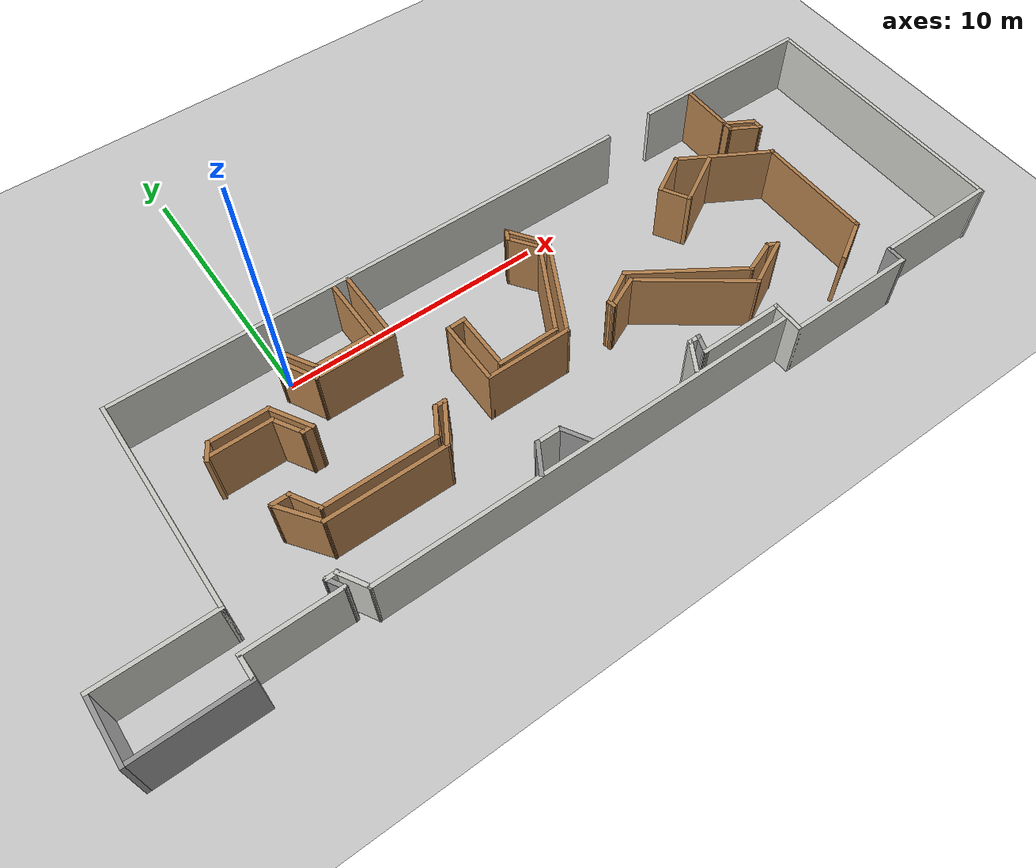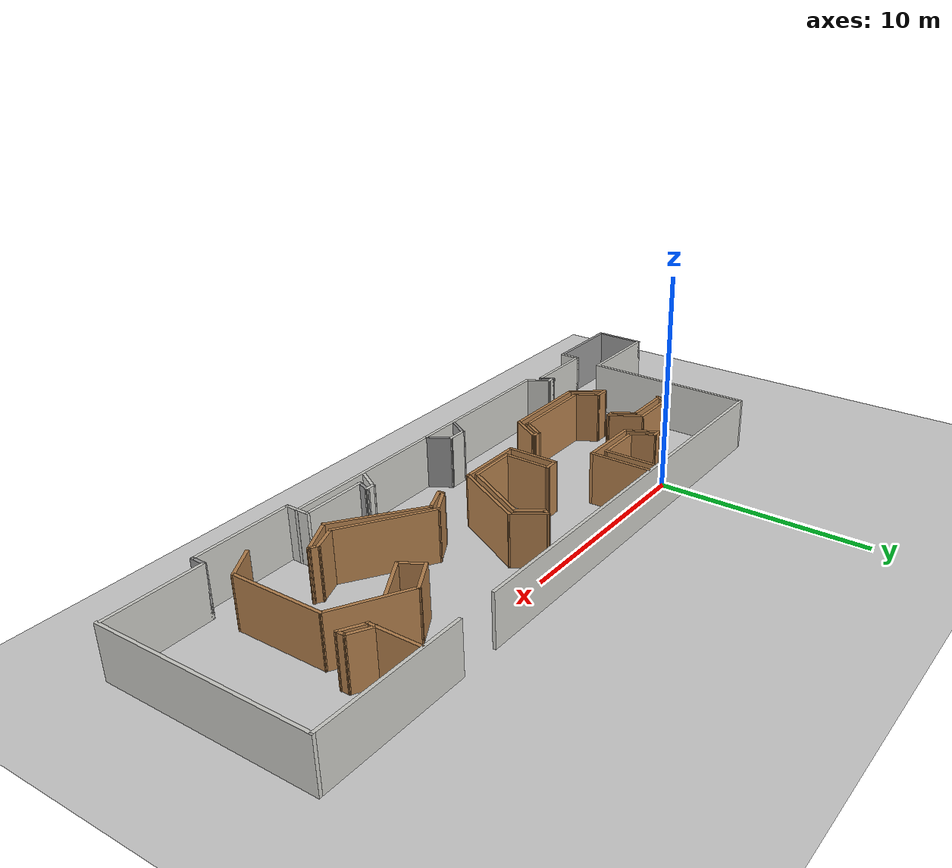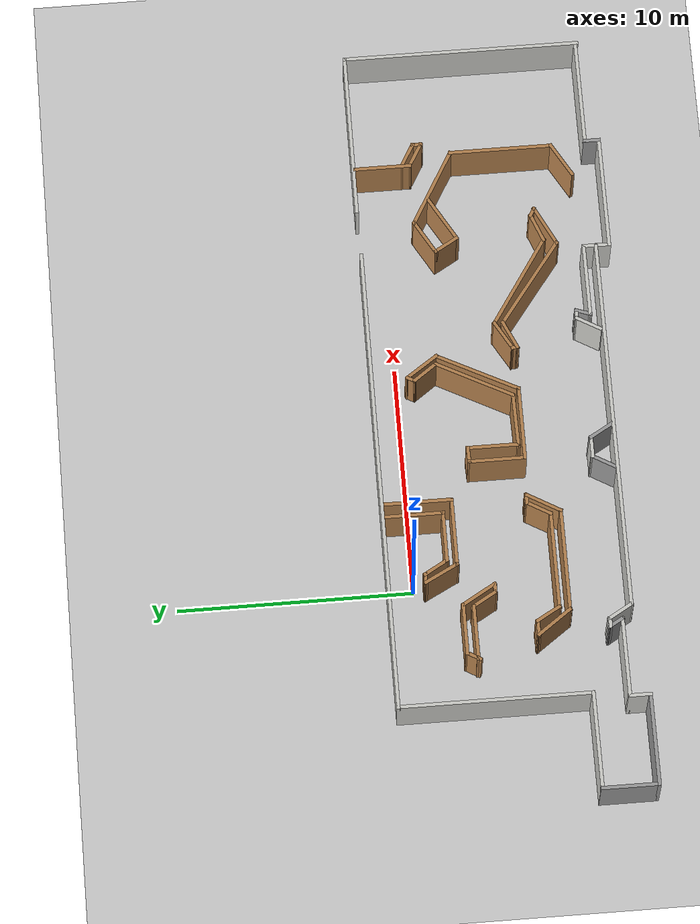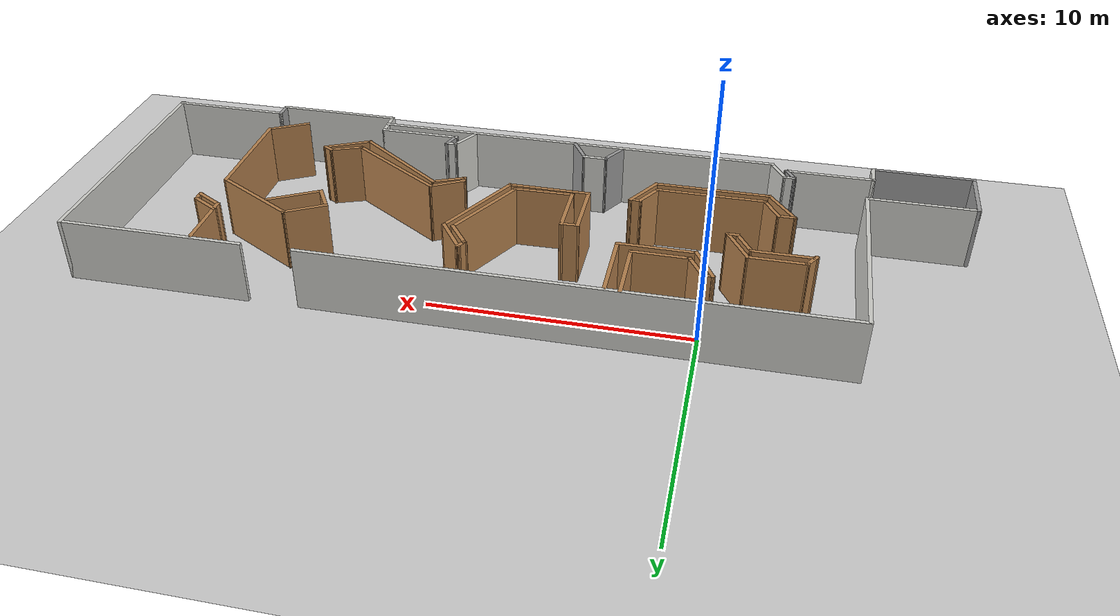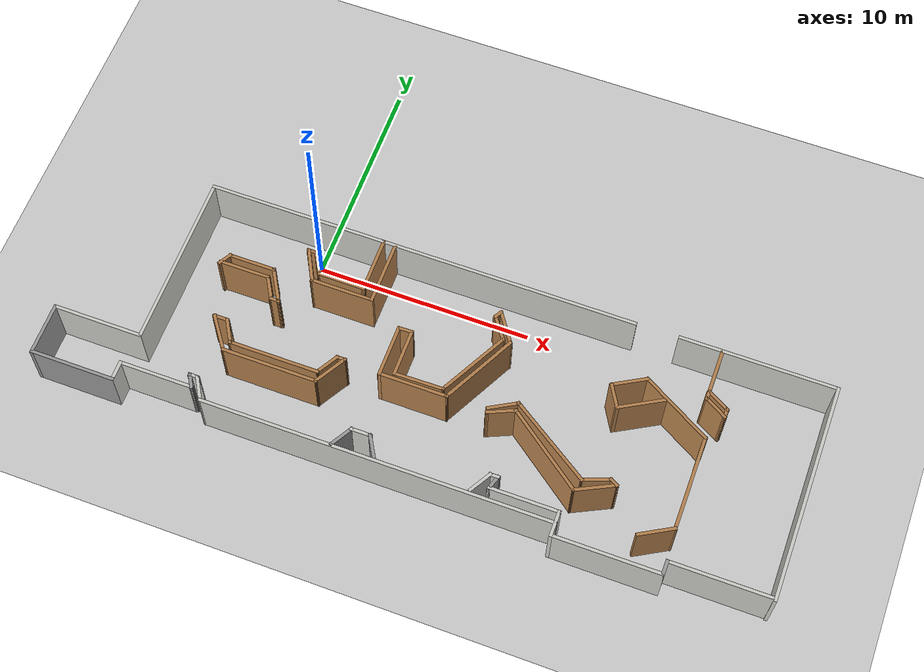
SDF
<sdf version="1.7">
 <world name="default">
  <light name="sun" type="directional">
   <pose>0 0 10 0 -0 0</pose>
   <diffuse>0.8 0.8 0.8 1</diffuse>
   <specular>0.2 0.2 0.2 1</specular>
   <attenuation>
    <range>1000</range>
    <constant>0.9</constant>
    <linear>0.01</linear>
    <quadratic>0.001</quadratic>
   </attenuation>
   <direction>-0.5 0.1 -0.9</direction>
   <spot><inner_angle>0</inner_angle><outer_angle>0</outer_angle><falloff>0</falloff></spot>
  </light>
  <model name="ground_plane">
   <static>1</static>
   <link name="link">
    <collision name="collision">
     <geometry><plane><normal>0 0 1</normal><size>100 100</size></plane></geometry>
     <surface>
      <contact><collide_bitmask>65535</collide_bitmask></contact>
      <friction><ode><mu>100</mu><mu2>50</mu2></ode></friction>
     </surface>
    </collision>
    <visual name="visual">
     <cast_shadows>0</cast_shadows>
     <geometry><plane><normal>0 0 1</normal><size>100 100</size></plane></geometry>
     <material>
      <script><uri>file://media/materials/scripts/gazebo.material</uri><name>Gazebo/Grey</name></script>
     </material>
    </visual>
   </link>
  </model>
  <gravity>0 0 -9.8</gravity>
  <magnetic_field>6e-06 2.3e-05 -4.2e-05</magnetic_field>
  <atmosphere type="adiabatic"/>
  <physics type="ode">
   <max_step_size>0.001</max_step_size>
   <real_time_factor>1</real_time_factor>
   <real_time_update_rate>1000</real_time_update_rate>
  </physics>
  <scene><ambient>0.4 0.4 0.4 1</ambient><background>0.7 0.7 0.7 1</background><shadows>1</shadows></scene>
  <spherical_coordinates>
   <surface_model>EARTH_WGS84</surface_model>
   <latitude_deg>0</latitude_deg>
   <longitude_deg>0</longitude_deg>
   <elevation>0</elevation>
   <heading_deg>0</heading_deg>
  </spherical_coordinates>
  <model name="galatamuseo">
   <pose>6.98533 -4.19559 0 0 -0 0</pose>
   <link name="Wall_10">
    <collision name="Wall_10_Collision">
     <geometry><box><size>2.5 0.15 2.5</size></box></geometry>
     <pose>0 0 1.25 0 -0 0</pose>
    </collision>
    <visual name="Wall_10_Visual">
     <pose>0 0 1.25 0 -0 0</pose>
     <geometry><box><size>2.5 0.15 2.5</size></box></geometry>
     <material>
      <script><uri>file://media/materials/scripts/gazebo.material</uri><name>Gazebo/Grey</name></script>
      <ambient>1 1 1 1</ambient>
     </material>
     <meta><layer>0</layer></meta>
    </visual>
    <pose>-16.6794 -3.98927 0 0 -0 1.5708</pose>
   </link>
   <link name="Wall_11">
    <collision name="Wall_11_Collision">
     <geometry><box><size>4.25 0.15 2.5</size></box></geometry>
     <pose>0 0 1.25 0 -0 0</pose>
    </collision>
    <visual name="Wall_11_Visual">
     <pose>0 0 1.25 0 -0 0</pose>
     <geometry><box><size>4.25 0.15 2.5</size></box></geometry>
     <material>
      <script><uri>file://media/materials/scripts/gazebo.material</uri><name>Gazebo/CeilingTiled</name></script>
      <ambient>1 1 1 1</ambient>
     </material>
     <meta><layer>0</layer></meta>
    </visual>
    <pose>-14.6294 -2.81427 0 0 -0 0</pose>
   </link>
   <link name="Wall_13">
    <collision name="Wall_13_Collision">
     <geometry><box><size>8.25 0.15 2.5</size></box></geometry>
     <pose>0 0 1.25 0 -0 0</pose>
    </collision>
    <visual name="Wall_13_Visual">
     <pose>0 0 1.25 0 -0 0</pose>
     <geometry><box><size>8.25 0.15 2.5</size></box></geometry>
     <material>
      <script><uri>file://media/materials/scripts/gazebo.material</uri><name>Gazebo/CeilingTiled</name></script>
      <ambient>1 1 1 1</ambient>
     </material>
     <meta><layer>0</layer></meta>
    </visual>
    <pose>-12.5794 1.23573 0 0 -0 1.5708</pose>
   </link>
   <link name="Wall_14">
    <collision name="Wall_14_Collision">
     <geometry><box><size>20.25 0.15 2.5</size></box></geometry>
     <pose>0 0 1.25 0 -0 0</pose>
    </collision>
    <visual name="Wall_14_Visual">
     <pose>0 0 1.25 0 -0 0</pose>
     <geometry><box><size>20.25 0.15 2.5</size></box></geometry>
     <material>
      <script><uri>file://media/materials/scripts/gazebo.material</uri><name>Gazebo/CeilingTiled</name></script>
      <ambient>1 1 1 1</ambient>
     </material>
     <meta><layer>0</layer></meta>
    </visual>
    <pose>-2.52941 5.28573 0 0 -0 0</pose>
   </link>
   <link name="Wall_16">
    <collision name="Wall_16_Collision">
     <geometry><box><size>7.25 0.15 2.5</size></box></geometry>
     <pose>0 0 1.25 0 -0 0</pose>
    </collision>
    <visual name="Wall_16_Visual">
     <pose>0 0 1.25 0 -0 0</pose>
     <geometry><box><size>7.25 0.15 2.5</size></box></geometry>
     <material>
      <script><uri>file://media/materials/scripts/gazebo.material</uri><name>Gazebo/CeilingTiled</name></script>
      <ambient>1 1 1 1</ambient>
     </material>
     <meta><layer>0</layer></meta>
    </visual>
    <pose>13.1294 5.32308 0 0 -0 0</pose>
   </link>
   <link name="Wall_17">
    <collision name="Wall_17_Collision">
     <geometry><box><size>10.25 0.15 2.5</size></box></geometry>
     <pose>0 0 1.25 0 -0 0</pose>
    </collision>
    <visual name="Wall_17_Visual">
     <pose>0 0 1.25 0 -0 0</pose>
     <geometry><box><size>10.25 0.15 2.5</size></box></geometry>
     <material>
      <script><uri>file://media/materials/scripts/gazebo.material</uri><name>Gazebo/CeilingTiled</name></script>
      <ambient>1 1 1 1</ambient>
     </material>
     <meta><layer>0</layer></meta>
    </visual>
    <pose>16.6794 0.273081 0 0 -0 -1.5708</pose>
   </link>
   <link name="Wall_20">
    <collision name="Wall_20_Collision">
     <geometry><box><size>1 0.15 2.5</size></box></geometry>
     <pose>0 0 1.25 0 -0 0</pose>
    </collision>
    <visual name="Wall_20_Visual">
     <pose>0 0 1.25 0 -0 0</pose>
     <geometry><box><size>1 0.15 2.5</size></box></geometry>
     <material>
      <script><uri>file://media/materials/scripts/gazebo.material</uri><name>Gazebo/CeilingTiled</name></script>
      <ambient>1 1 1 1</ambient>
     </material>
     <meta><layer>0</layer></meta>
    </visual>
    <pose>-12.8294 -4.73927 0 0 -0 1.5708</pose>
   </link>
   <link name="Wall_21">
    <collision name="Wall_21_Collision">
     <geometry><box><size>3.5 0.15 2.5</size></box></geometry>
     <pose>0 0 1.25 0 -0 0</pose>
    </collision>
    <visual name="Wall_21_Visual">
     <pose>0 0 1.25 0 -0 0</pose>
     <geometry><box><size>3.5 0.15 2.5</size></box></geometry>
     <material>
      <script><uri>file://media/materials/scripts/gazebo.material</uri><name>Gazebo/CeilingTiled</name></script>
      <ambient>1 1 1 1</ambient>
     </material>
     <meta><layer>0</layer></meta>
    </visual>
    <pose>-11.1544 -4.31427 0 0 -0 0</pose>
   </link>
   <link name="Wall_22">
    <collision name="Wall_22_Collision">
     <geometry><box><size>0.75 0.15 2.5</size></box></geometry>
     <pose>0 0 1.25 0 -0 0</pose>
    </collision>
    <visual name="Wall_22_Visual">
     <pose>0 0 1.25 0 -0 0</pose>
     <geometry><box><size>0.75 0.15 2.5</size></box></geometry>
     <material>
      <script><uri>file://media/materials/scripts/gazebo.material</uri><name>Gazebo/Grey</name></script>
      <ambient>1 1 1 1</ambient>
     </material>
     <meta><layer>0</layer></meta>
    </visual>
    <pose>-9.62941 -4.05446 0 0 -0 2.0944</pose>
   </link>
   <link name="Wall_23">
    <collision name="Wall_23_Collision">
     <geometry><box><size>0.15 0.15 2.5</size></box></geometry>
     <pose>0 0 1.25 0 -0 0</pose>
    </collision>
    <visual name="Wall_23_Visual">
     <pose>0 0 1.25 0 -0 0</pose>
     <geometry><box><size>0.15 0.15 2.5</size></box></geometry>
     <material>
      <script><uri>file://media/materials/scripts/gazebo.material</uri><name>Gazebo/Grey</name></script>
      <ambient>1 1 1 1</ambient>
     </material>
     <meta><layer>0</layer></meta>
    </visual>
    <pose>-9.77941 -3.79465 0 0 -0 0</pose>
   </link>
   <link name="Wall_25">
    <collision name="Wall_25_Collision">
     <geometry><box><size>0.5 0.15 2.5</size></box></geometry>
     <pose>0 0 1.25 0 -0 0</pose>
    </collision>
    <visual name="Wall_25_Visual">
     <pose>0 0 1.25 0 -0 0</pose>
     <geometry><box><size>0.5 0.15 2.5</size></box></geometry>
     <material>
      <script><uri>file://media/materials/scripts/gazebo.material</uri><name>Gazebo/CeilingTiled</name></script>
      <ambient>1 1 1 1</ambient>
     </material>
     <meta><layer>0</layer></meta>
    </visual>
    <pose>-9.60441 -3.79465 0 0 -0 0</pose>
   </link>
   <link name="Wall_26">
    <collision name="Wall_26_Collision">
     <geometry><box><size>1.25 0.15 2.5</size></box></geometry>
     <pose>0 0 1.25 0 -0 0</pose>
    </collision>
    <visual name="Wall_26_Visual">
     <pose>0 0 1.25 0 -0 0</pose>
     <geometry><box><size>1.25 0.15 2.5</size></box></geometry>
     <material>
      <script><uri>file://media/materials/scripts/gazebo.material</uri><name>Gazebo/CeilingTiled</name></script>
      <ambient>1 1 1 1</ambient>
     </material>
     <meta><layer>0</layer></meta>
    </visual>
    <pose>-9.15441 -4.27097 0 0 -0 -1.0472</pose>
   </link>
   <link name="Wall_27">
    <collision name="Wall_27_Collision">
     <geometry><box><size>16.25 0.15 2.5</size></box></geometry>
     <pose>0 0 1.25 0 -0 0</pose>
    </collision>
    <visual name="Wall_27_Visual">
     <pose>0 0 1.25 0 -0 0</pose>
     <geometry><box><size>16.25 0.15 2.5</size></box></geometry>
     <material>
      <script><uri>file://media/materials/scripts/gazebo.material</uri><name>Gazebo/CeilingTiled</name></script>
      <ambient>1 1 1 1</ambient>
     </material>
     <meta><layer>0</layer></meta>
    </visual>
    <pose>-0.829412 -4.74728 0 0 -0 0</pose>
   </link>
   <link name="Wall_30">
    <collision name="Wall_30_Collision">
     <geometry><box><size>1.25 0.15 2.5</size></box></geometry>
     <pose>0 0 1.25 0 -0 0</pose>
    </collision>
    <visual name="Wall_30_Visual">
     <pose>0 0 1.25 0 -0 0</pose>
     <geometry><box><size>1.25 0.15 2.5</size></box></geometry>
     <material>
      <script><uri>file://media/materials/scripts/gazebo.material</uri><name>Gazebo/Grey</name></script>
      <ambient>1 1 1 1</ambient>
     </material>
     <meta><layer>0</layer></meta>
    </visual>
    <pose>-2.55852 -4.21984 0 0 -0 1.0472</pose>
   </link>
   <link name="Wall_31">
    <collision name="Wall_31_Collision">
     <geometry><box><size>1 0.15 2.5</size></box></geometry>
     <pose>0 0 1.25 0 -0 0</pose>
    </collision>
    <visual name="Wall_31_Visual">
     <pose>0 0 1.25 0 -0 0</pose>
     <geometry><box><size>1 0.15 2.5</size></box></geometry>
     <material>
      <script><uri>file://media/materials/scripts/gazebo.material</uri><name>Gazebo/CeilingTiled</name></script>
      <ambient>1 1 1 1</ambient>
     </material>
     <meta><layer>0</layer></meta>
    </visual>
    <pose>-1.85852 -3.74353 0 0 -0 0</pose>
   </link>
   <link name="Wall_32">
    <collision name="Wall_32_Collision">
     <geometry><box><size>1.25 0.15 2.5</size></box></geometry>
     <pose>0 0 1.25 0 -0 0</pose>
    </collision>
    <visual name="Wall_32_Visual">
     <pose>0 0 1.25 0 -0 0</pose>
     <geometry><box><size>1.25 0.15 2.5</size></box></geometry>
     <material>
      <script><uri>file://media/materials/scripts/gazebo.material</uri><name>Gazebo/Grey</name></script>
      <ambient>1 1 1 1</ambient>
     </material>
     <meta><layer>0</layer></meta>
    </visual>
    <pose>-1.15852 -4.21984 0 0 -0 -1.0472</pose>
   </link>
   <link name="Wall_34">
    <collision name="Wall_34_Collision">
     <geometry><box><size>1.25 0.15 2.5</size></box></geometry>
     <pose>0 0 1.25 0 -0 0</pose>
    </collision>
    <visual name="Wall_34_Visual">
     <pose>0 0 1.25 0 -0 0</pose>
     <geometry><box><size>1.25 0.15 2.5</size></box></geometry>
     <material>
      <script><uri>file://media/materials/scripts/gazebo.material</uri><name>Gazebo/CeilingTiled</name></script>
      <ambient>1 1 1 1</ambient>
     </material>
     <meta><layer>0</layer></meta>
    </visual>
    <pose>3.68148 -4.11984 0 0 -0 1.0472</pose>
   </link>
   <link name="Wall_35">
    <collision name="Wall_35_Collision">
     <geometry><box><size>0.5 0.15 2.5</size></box></geometry>
     <pose>0 0 1.25 0 -0 0</pose>
    </collision>
    <visual name="Wall_35_Visual">
     <pose>0 0 1.25 0 -0 0</pose>
     <geometry><box><size>0.5 0.15 2.5</size></box></geometry>
     <material>
      <script><uri>file://media/materials/scripts/gazebo.material</uri><name>Gazebo/CeilingTiled</name></script>
      <ambient>1 1 1 1</ambient>
     </material>
     <meta><layer>0</layer></meta>
    </visual>
    <pose>4.13148 -3.64353 0 0 -0 0</pose>
   </link>
   <link name="Wall_36">
    <collision name="Wall_36_Collision">
     <geometry><box><size>0.761574 0.15 2.5</size></box></geometry>
     <pose>0 0 1.25 0 -0 0</pose>
    </collision>
    <visual name="Wall_36_Visual">
     <pose>0 0 1.25 0 -0 0</pose>
     <geometry><box><size>0.761574 0.15 2.5</size></box></geometry>
     <material>
      <script><uri>file://media/materials/scripts/gazebo.material</uri><name>Gazebo/Grey</name></script>
      <ambient>1 1 1 1</ambient>
     </material>
     <meta><layer>0</layer></meta>
    </visual>
    <pose>4.20884 -3.9333 0 0 -0 -1.89581</pose>
   </link>
   <link name="Wall_39">
    <collision name="Wall_39_Collision">
     <geometry><box><size>3.25 0.15 2.5</size></box></geometry>
     <pose>0 0 1.25 0 -0 0</pose>
    </collision>
    <visual name="Wall_39_Visual">
     <pose>0 0 1.25 0 -0 0</pose>
     <geometry><box><size>3.25 0.15 2.5</size></box></geometry>
     <material>
      <script><uri>file://media/materials/scripts/gazebo.material</uri><name>Gazebo/CeilingTiled</name></script>
      <ambient>1 1 1 1</ambient>
     </material>
     <meta><layer>0</layer></meta>
    </visual>
    <pose>5.66119 -4.22308 0 0 -0 0</pose>
   </link>
   <link name="Wall_40">
    <collision name="Wall_40_Collision">
     <geometry><box><size>1.25 0.15 2.5</size></box></geometry>
     <pose>0 0 1.25 0 -0 0</pose>
    </collision>
    <visual name="Wall_40_Visual">
     <pose>0 0 1.25 0 -0 0</pose>
     <geometry><box><size>1.25 0.15 2.5</size></box></geometry>
     <material>
      <script><uri>file://media/materials/scripts/gazebo.material</uri><name>Gazebo/CeilingTiled</name></script>
      <ambient>1 1 1 1</ambient>
     </material>
     <meta><layer>0</layer></meta>
    </visual>
    <pose>7.21119 -4.77308 0 0 -0 -1.5708</pose>
   </link>
   <link name="Wall_41">
    <collision name="Wall_41_Collision">
     <geometry><box><size>5 0.15 2.5</size></box></geometry>
     <pose>0 0 1.25 0 -0 0</pose>
    </collision>
    <visual name="Wall_41_Visual">
     <pose>0 0 1.25 0 -0 0</pose>
     <geometry><box><size>5 0.15 2.5</size></box></geometry>
     <material>
      <script><uri>file://media/materials/scripts/gazebo.material</uri><name>Gazebo/CeilingTiled</name></script>
      <ambient>1 1 1 1</ambient>
     </material>
     <meta><layer>0</layer></meta>
    </visual>
    <pose>9.63619 -5.32308 0 0 -0 0</pose>
   </link>
   <link name="Wall_42">
    <collision name="Wall_42_Collision">
     <geometry><box><size>0.75 0.15 2.5</size></box></geometry>
     <pose>0 0 1.25 0 -0 0</pose>
    </collision>
    <visual name="Wall_42_Visual">
     <pose>0 0 1.25 0 -0 0</pose>
     <geometry><box><size>0.75 0.15 2.5</size></box></geometry>
     <material>
      <script><uri>file://media/materials/scripts/gazebo.material</uri><name>Gazebo/Grey</name></script>
      <ambient>1 1 1 1</ambient>
     </material>
     <meta><layer>0</layer></meta>
    </visual>
    <pose>12.0612 -5.02308 0 0 -0 1.5708</pose>
   </link>
   <link name="Wall_43">
    <collision name="Wall_43_Collision">
     <geometry><box><size>4.75 0.15 2.5</size></box></geometry>
     <pose>0 0 1.25 0 -0 0</pose>
    </collision>
    <visual name="Wall_43_Visual">
     <pose>0 0 1.25 0 -0 0</pose>
     <geometry><box><size>4.75 0.15 2.5</size></box></geometry>
     <material>
      <script><uri>file://media/materials/scripts/gazebo.material</uri><name>Gazebo/CeilingTiled</name></script>
      <ambient>1 1 1 1</ambient>
     </material>
     <meta><layer>0</layer></meta>
    </visual>
    <pose>14.3612 -4.72308 0 0 -0 0</pose>
   </link>
   <link name="Wall_45">
    <collision name="Wall_45_Collision">
     <geometry><box><size>1.75 0.15 2.5</size></box></geometry>
     <pose>0 0 1.25 0 -0 0</pose>
    </collision>
    <visual name="Wall_45_Visual">
     <pose>0 0 1.25 0 -0 0</pose>
     <geometry><box><size>1.75 0.15 2.5</size></box></geometry>
     <material>
      <script><uri>file://media/materials/scripts/gazebo.material</uri><name>Gazebo/Wood</name></script>
      <ambient>1 1 1 1</ambient>
     </material>
     <meta><layer>0</layer></meta>
    </visual>
    <pose>11.2673 -3.63644 0 0 -0 0.523599</pose>
   </link>
   <link name="Wall_46">
    <collision name="Wall_46_Collision">
     <geometry><box><size>4.5 0.15 2.5</size></box></geometry>
     <pose>0 0 1.25 0 -0 0</pose>
    </collision>
    <visual name="Wall_46_Visual">
     <pose>0 0 1.25 0 -0 0</pose>
     <geometry><box><size>4.5 0.15 2.5</size></box></geometry>
     <material>
      <script><uri>file://media/materials/scripts/gazebo.material</uri><name>Gazebo/Wood</name></script>
      <ambient>1 1 1 1</ambient>
     </material>
     <meta><layer>0</layer></meta>
    </visual>
    <pose>11.9601 -1.06144 0 0 -0 1.5708</pose>
   </link>
   <link name="Wall_47">
    <collision name="Wall_47_Collision">
     <geometry><box><size>3.75 0.15 2.5</size></box></geometry>
     <pose>0 0 1.25 0 -0 0</pose>
    </collision>
    <visual name="Wall_47_Visual">
     <pose>0 0 1.25 0 -0 0</pose>
     <geometry><box><size>3.75 0.15 2.5</size></box></geometry>
     <material>
      <script><uri>file://media/materials/scripts/gazebo.material</uri><name>Gazebo/Wood</name></script>
      <ambient>1 1 1 1</ambient>
     </material>
     <meta><layer>0</layer></meta>
    </visual>
    <pose>10.4013 2.01356 0 0 -0 2.61799</pose>
   </link>
   <link name="Wall_49">
    <collision name="Wall_49_Collision">
     <geometry><box><size>1.75 0.15 2.5</size></box></geometry>
     <pose>0 0 1.25 0 -0 0</pose>
    </collision>
    <visual name="Wall_49_Visual">
     <pose>0 0 1.25 0 -0 0</pose>
     <geometry><box><size>1.75 0.15 2.5</size></box></geometry>
     <material>
      <script><uri>file://media/materials/scripts/gazebo.material</uri><name>Gazebo/Wood</name></script>
      <ambient>1 1 1 1</ambient>
     </material>
     <meta><layer>0</layer></meta>
    </visual>
    <pose>8.14959 2.51356 0 0 -0 -2.61799</pose>
   </link>
   <link name="Wall_50">
    <collision name="Wall_50_Collision">
     <geometry><box><size>1.25 0.15 2.5</size></box></geometry>
     <pose>0 0 1.25 0 -0 0</pose>
    </collision>
    <visual name="Wall_50_Visual">
     <pose>0 0 1.25 0 -0 0</pose>
     <geometry><box><size>1.25 0.15 2.5</size></box></geometry>
     <material>
      <script><uri>file://media/materials/scripts/gazebo.material</uri><name>Gazebo/Wood</name></script>
      <ambient>1 1 1 1</ambient>
     </material>
     <meta><layer>0</layer></meta>
    </visual>
    <pose>7.73177 1.63724 0 0 -0 -1.0472</pose>
   </link>
   <link name="Wall_51">
    <collision name="Wall_51_Collision">
     <geometry><box><size>2.25 0.15 2.5</size></box></geometry>
     <pose>0 0 1.25 0 -0 0</pose>
    </collision>
    <visual name="Wall_51_Visual">
     <pose>0 0 1.25 0 -0 0</pose>
     <geometry><box><size>2.25 0.15 2.5</size></box></geometry>
     <material>
      <script><uri>file://media/materials/scripts/gazebo.material</uri><name>Gazebo/Wood</name></script>
      <ambient>1 1 1 1</ambient>
     </material>
     <meta><layer>0</layer></meta>
    </visual>
    <pose>8.91609 1.68593 0 0 -0 0.523599</pose>
   </link>
   <link name="Wall_53">
    <collision name="Wall_53_Collision">
     <geometry><box><size>1.5 0.15 2.5</size></box></geometry>
     <pose>0 0 1.25 0 -0 0</pose>
    </collision>
    <visual name="Wall_53_Visual">
     <pose>0 0 1.25 0 -0 0</pose>
     <geometry><box><size>1.5 0.15 2.5</size></box></geometry>
     <material>
      <script><uri>file://media/materials/scripts/gazebo.material</uri><name>Gazebo/Wood</name></script>
      <ambient>1 1 1 1</ambient>
     </material>
     <meta><layer>0</layer></meta>
    </visual>
    <pose>3.4148 -0.461497 0 0 -0 0.523599</pose>
   </link>
   <link name="Wall_54">
    <collision name="Wall_54_Collision">
     <geometry><box><size>4.51774 0.15 2.5</size></box></geometry>
     <pose>0 0 1.25 0 -0 0</pose>
    </collision>
    <visual name="Wall_54_Visual">
     <pose>0 0 1.25 0 -0 0</pose>
     <geometry><box><size>4.51774 0.15 2.5</size></box></geometry>
     <material>
      <script><uri>file://media/materials/scripts/gazebo.material</uri><name>Gazebo/Wood</name></script>
      <ambient>1 1 1 1</ambient>
     </material>
     <meta><layer>0</layer></meta>
    </visual>
    <pose>5.81933 -1.33106 0 0 -0 -0.585622</pose>
   </link>
   <link name="Wall_56">
    <collision name="Wall_56_Collision">
     <geometry><box><size>1.38564 0.15 2.5</size></box></geometry>
     <pose>0 0 1.25 0 -0 0</pose>
    </collision>
    <visual name="Wall_56_Visual">
     <pose>0 0 1.25 0 -0 0</pose>
     <geometry><box><size>1.38564 0.15 2.5</size></box></geometry>
     <material>
      <script><uri>file://media/materials/scripts/gazebo.material</uri><name>Gazebo/Wood</name></script>
      <ambient>1 1 1 1</ambient>
     </material>
     <meta><layer>0</layer></meta>
    </visual>
    <pose>8.21397 -2.31128 0 0 -0 0.375961</pose>
   </link>
   <link name="Wall_57">
    <collision name="Wall_57_Collision">
     <geometry><box><size>0.5 0.15 2.5</size></box></geometry>
     <pose>0 0 1.25 0 -0 0</pose>
    </collision>
    <visual name="Wall_57_Visual">
     <pose>0 0 1.25 0 -0 0</pose>
     <geometry><box><size>0.5 0.15 2.5</size></box></geometry>
     <material>
      <script><uri>file://media/materials/scripts/gazebo.material</uri><name>Gazebo/Wood</name></script>
      <ambient>1 1 1 1</ambient>
     </material>
     <meta><layer>0</layer></meta>
    </visual>
    <pose>8.9402 -2.17194 0 0 -0 -0.523599</pose>
   </link>
   <link name="Wall_58">
    <collision name="Wall_58_Collision">
     <geometry><box><size>1.97954 0.15 2.5</size></box></geometry>
     <pose>0 0 1.25 0 -0 0</pose>
    </collision>
    <visual name="Wall_58_Visual">
     <pose>0 0 1.25 0 -0 0</pose>
     <geometry><box><size>1.97954 0.15 2.5</size></box></geometry>
     <material>
      <script><uri>file://media/materials/scripts/gazebo.material</uri><name>Gazebo/Wood</name></script>
      <ambient>1 1 1 1</ambient>
     </material>
     <meta><layer>0</layer></meta>
    </visual>
    <pose>8.27479 -2.671 0 0 -0 -2.67494</pose>
   </link>
   <link name="Wall_59">
    <collision name="Wall_59_Collision">
     <geometry><box><size>4.48119 0.15 2.5</size></box></geometry>
     <pose>0 0 1.25 0 -0 0</pose>
    </collision>
    <visual name="Wall_59_Visual">
     <pose>0 0 1.25 0 -0 0</pose>
     <geometry><box><size>4.48119 0.15 2.5</size></box></geometry>
     <material>
      <script><uri>file://media/materials/scripts/gazebo.material</uri><name>Gazebo/Wood</name></script>
      <ambient>1 1 1 1</ambient>
     </material>
     <meta><layer>0</layer></meta>
    </visual>
    <pose>5.72626 -1.78198 0 0 -0 2.49739</pose>
   </link>
   <link name="Wall_60">
    <collision name="Wall_60_Collision">
     <geometry><box><size>1.39532 0.15 2.5</size></box></geometry>
     <pose>0 0 1.25 0 -0 0</pose>
    </collision>
    <visual name="Wall_60_Visual">
     <pose>0 0 1.25 0 -0 0</pose>
     <geometry><box><size>1.39532 0.15 2.5</size></box></geometry>
     <material>
      <script><uri>file://media/materials/scripts/gazebo.material</uri><name>Gazebo/Wood</name></script>
      <ambient>1 1 1 1</ambient>
     </material>
     <meta><layer>0</layer></meta>
    </visual>
    <pose>3.42759 -0.738506 0 0 -0 -2.71597</pose>
   </link>
   <link name="Wall_61">
    <collision name="Wall_61_Collision">
     <geometry><box><size>0.34891 0.15 2.5</size></box></geometry>
     <pose>0 0 1.25 0 -0 0</pose>
    </collision>
    <visual name="Wall_61_Visual">
     <pose>0 0 1.25 0 -0 0</pose>
     <geometry><box><size>0.34891 0.15 2.5</size></box></geometry>
     <material>
      <script><uri>file://media/materials/scripts/gazebo.material</uri><name>Gazebo/Wood</name></script>
      <ambient>1 1 1 1</ambient>
     </material>
     <meta><layer>0</layer></meta>
    </visual>
    <pose>2.84535 -0.897297 0 0 -0 1.72345</pose>
   </link>
   <link name="Wall_63">
    <collision name="Wall_63_Collision">
     <geometry><box><size>2.5 0.15 2.5</size></box></geometry>
     <pose>0 0 1.25 0 -0 0</pose>
    </collision>
    <visual name="Wall_63_Visual">
     <pose>0 0 1.25 0 -0 0</pose>
     <geometry><box><size>2.5 0.15 2.5</size></box></geometry>
     <material>
      <script><uri>file://media/materials/scripts/gazebo.material</uri><name>Gazebo/Wood</name></script>
      <ambient>1 1 1 1</ambient>
     </material>
     <meta><layer>0</layer></meta>
    </visual>
    <pose>-2.11226 0.286198 0 0 -0 -1.5708</pose>
   </link>
   <link name="Wall_64">
    <collision name="Wall_64_Collision">
     <geometry><box><size>3.25 0.15 2.5</size></box></geometry>
     <pose>0 0 1.25 0 -0 0</pose>
    </collision>
    <visual name="Wall_64_Visual">
     <pose>0 0 1.25 0 -0 0</pose>
     <geometry><box><size>3.25 0.15 2.5</size></box></geometry>
     <material>
      <script><uri>file://media/materials/scripts/gazebo.material</uri><name>Gazebo/Wood</name></script>
      <ambient>1 1 1 1</ambient>
     </material>
     <meta><layer>0</layer></meta>
    </visual>
    <pose>-0.562258 -0.888803 0 0 -0 0</pose>
   </link>
   <link name="Wall_65">
    <collision name="Wall_65_Collision">
     <geometry><box><size>3.92715 0.15 2.5</size></box></geometry>
     <pose>0 0 1.25 0 -0 0</pose>
    </collision>
    <visual name="Wall_65_Visual">
     <pose>0 0 1.25 0 -0 0</pose>
     <geometry><box><size>3.92715 0.15 2.5</size></box></geometry>
     <material>
      <script><uri>file://media/materials/scripts/gazebo.material</uri><name>Gazebo/Wood</name></script>
      <ambient>1 1 1 1</ambient>
     </material>
     <meta><layer>0</layer></meta>
    </visual>
    <pose>1.84641 0.793285 0 0 -0 1.0988</pose>
   </link>
   <link name="Wall_66">
    <collision name="Wall_66_Collision">
     <geometry><box><size>1.70795 0.15 2.5</size></box></geometry>
     <pose>0 0 1.25 0 -0 0</pose>
    </collision>
    <visual name="Wall_66_Visual">
     <pose>0 0 1.25 0 -0 0</pose>
     <geometry><box><size>1.70795 0.15 2.5</size></box></geometry>
     <material>
      <script><uri>file://media/materials/scripts/gazebo.material</uri><name>Gazebo/Wood</name></script>
      <ambient>1 1 1 1</ambient>
     </material>
     <meta><layer>0</layer></meta>
    </visual>
    <pose>2.26625 3.11898 0 0 -0 2.16921</pose>
   </link>
   <link name="Wall_67">
    <collision name="Wall_67_Collision">
     <geometry><box><size>0.481557 0.15 2.5</size></box></geometry>
     <pose>0 0 1.25 0 -0 0</pose>
    </collision>
    <visual name="Wall_67_Visual">
     <pose>0 0 1.25 0 -0 0</pose>
     <geometry><box><size>0.481557 0.15 2.5</size></box></geometry>
     <material>
      <script><uri>file://media/materials/scripts/gazebo.material</uri><name>Gazebo/Wood</name></script>
      <ambient>1 1 1 1</ambient>
     </material>
     <meta><layer>0</layer></meta>
    </visual>
    <pose>1.74941 3.61632 0 0 -0 -2.06075</pose>
   </link>
   <link name="Wall_68">
    <collision name="Wall_68_Collision">
     <geometry><box><size>1.32442 0.15 2.5</size></box></geometry>
     <pose>0 0 1.25 0 -0 0</pose>
    </collision>
    <visual name="Wall_68_Visual">
     <pose>0 0 1.25 0 -0 0</pose>
     <geometry><box><size>1.32442 0.15 2.5</size></box></geometry>
     <material>
      <script><uri>file://media/materials/scripts/gazebo.material</uri><name>Gazebo/Wood</name></script>
      <ambient>1 1 1 1</ambient>
     </material>
     <meta><layer>0</layer></meta>
    </visual>
    <pose>2.0127 2.99221 0 0 -0 -0.950547</pose>
   </link>
   <link name="Wall_69">
    <collision name="Wall_69_Collision">
     <geometry><box><size>3.69172 0.15 2.5</size></box></geometry>
     <pose>0 0 1.25 0 -0 0</pose>
    </collision>
    <visual name="Wall_69_Visual">
     <pose>0 0 1.25 0 -0 0</pose>
     <geometry><box><size>3.69172 0.15 2.5</size></box></geometry>
     <material>
      <script><uri>file://media/materials/scripts/gazebo.material</uri><name>Gazebo/Wood</name></script>
      <ambient>1 1 1 1</ambient>
     </material>
     <meta><layer>0</layer></meta>
    </visual>
    <pose>1.53487 0.944359 0 0 -0 -2.05168</pose>
   </link>
   <link name="Wall_70">
    <collision name="Wall_70_Collision">
     <geometry><box><size>2.37347 0.15 2.5</size></box></geometry>
     <pose>0 0 1.25 0 -0 0</pose>
    </collision>
    <visual name="Wall_70_Visual">
     <pose>0 0 1.25 0 -0 0</pose>
     <geometry><box><size>2.37347 0.15 2.5</size></box></geometry>
     <material>
      <script><uri>file://media/materials/scripts/gazebo.material</uri><name>Gazebo/Wood</name></script>
      <ambient>1 1 1 1</ambient>
     </material>
     <meta><layer>0</layer></meta>
    </visual>
    <pose>-0.395963 -0.645165 0 0 -0 -3.12405</pose>
   </link>
   <link name="Wall_71">
    <collision name="Wall_71_Collision">
     <geometry><box><size>2.29537 0.15 2.5</size></box></geometry>
     <pose>0 0 1.25 0 -0 0</pose>
    </collision>
    <visual name="Wall_71_Visual">
     <pose>0 0 1.25 0 -0 0</pose>
     <geometry><box><size>2.29537 0.15 2.5</size></box></geometry>
     <material>
      <script><uri>file://media/materials/scripts/gazebo.material</uri><name>Gazebo/Wood</name></script>
      <ambient>1 1 1 1</ambient>
     </material>
     <meta><layer>0</layer></meta>
    </visual>
    <pose>-1.50765 0.408016 0 0 -0 1.5708</pose>
   </link>
   <link name="Wall_72">
    <collision name="Wall_72_Collision">
     <geometry><box><size>0.754918 0.15 2.5</size></box></geometry>
     <pose>0 0 1.25 0 -0 0</pose>
    </collision>
    <visual name="Wall_72_Visual">
     <pose>0 0 1.25 0 -0 0</pose>
     <geometry><box><size>0.754918 0.15 2.5</size></box></geometry>
     <material>
      <script><uri>file://media/materials/scripts/gazebo.material</uri><name>Gazebo/Wood</name></script>
      <ambient>1 1 1 1</ambient>
     </material>
     <meta><layer>0</layer></meta>
    </visual>
    <pose>-1.80996 1.47095 0 0 -0 -3.10935</pose>
   </link>
   <link name="Wall_74">
    <collision name="Wall_74_Collision">
     <geometry><box><size>0.75 0.15 2.5</size></box></geometry>
     <pose>0 0 1.25 0 -0 0</pose>
    </collision>
    <visual name="Wall_74_Visual">
     <pose>0 0 1.25 0 -0 0</pose>
     <geometry><box><size>0.75 0.15 2.5</size></box></geometry>
     <material>
      <script><uri>file://media/materials/scripts/gazebo.material</uri><name>Gazebo/Wood</name></script>
      <ambient>1 1 1 1</ambient>
     </material>
     <meta><layer>0</layer></meta>
    </visual>
    <pose>-9.61715 -0.793927 0 0 -0 0</pose>
   </link>
   <link name="Wall_75">
    <collision name="Wall_75_Collision">
     <geometry><box><size>1.25 0.15 2.5</size></box></geometry>
     <pose>0 0 1.25 0 -0 0</pose>
    </collision>
    <visual name="Wall_75_Visual">
     <pose>0 0 1.25 0 -0 0</pose>
     <geometry><box><size>1.25 0.15 2.5</size></box></geometry>
     <material>
      <script><uri>file://media/materials/scripts/gazebo.material</uri><name>Gazebo/Wood</name></script>
      <ambient>1 1 1 1</ambient>
     </material>
     <meta><layer>0</layer></meta>
    </visual>
    <pose>-9.04215 -1.27024 0 0 -0 -1.0472</pose>
   </link>
   <link name="Wall_76">
    <collision name="Wall_76_Collision">
     <geometry><box><size>4.25 0.15 2.5</size></box></geometry>
     <pose>0 0 1.25 0 -0 0</pose>
    </collision>
    <visual name="Wall_76_Visual">
     <pose>0 0 1.25 0 -0 0</pose>
     <geometry><box><size>4.25 0.15 2.5</size></box></geometry>
     <material>
      <script><uri>file://media/materials/scripts/gazebo.material</uri><name>Gazebo/Wood</name></script>
      <ambient>1 1 1 1</ambient>
     </material>
     <meta><layer>0</layer></meta>
    </visual>
    <pose>-6.71715 -1.74656 0 0 -0 0</pose>
   </link>
   <link name="Wall_77">
    <collision name="Wall_77_Collision">
     <geometry><box><size>1.25 0.15 2.5</size></box></geometry>
     <pose>0 0 1.25 0 -0 0</pose>
    </collision>
    <visual name="Wall_77_Visual">
     <pose>0 0 1.25 0 -0 0</pose>
     <geometry><box><size>1.25 0.15 2.5</size></box></geometry>
     <material>
      <script><uri>file://media/materials/scripts/gazebo.material</uri><name>Gazebo/Wood</name></script>
      <ambient>1 1 1 1</ambient>
     </material>
     <meta><layer>0</layer></meta>
    </visual>
    <pose>-4.39215 -1.27024 0 0 -0 1.0472</pose>
   </link>
   <link name="Wall_78">
    <collision name="Wall_78_Collision">
     <geometry><box><size>0.5 0.15 2.5</size></box></geometry>
     <pose>0 0 1.25 0 -0 0</pose>
    </collision>
    <visual name="Wall_78_Visual">
     <pose>0 0 1.25 0 -0 0</pose>
     <geometry><box><size>0.5 0.15 2.5</size></box></geometry>
     <material>
      <script><uri>file://media/materials/scripts/gazebo.material</uri><name>Gazebo/Wood</name></script>
      <ambient>1 1 1 1</ambient>
     </material>
     <meta><layer>0</layer></meta>
    </visual>
    <pose>-3.94215 -0.793927 0 0 -0 0</pose>
   </link>
   <link name="Wall_79">
    <collision name="Wall_79_Collision">
     <geometry><box><size>1.75 0.15 2.5</size></box></geometry>
     <pose>0 0 1.25 0 -0 0</pose>
    </collision>
    <visual name="Wall_79_Visual">
     <pose>0 0 1.25 0 -0 0</pose>
     <geometry><box><size>1.75 0.15 2.5</size></box></geometry>
     <material>
      <script><uri>file://media/materials/scripts/gazebo.material</uri><name>Gazebo/Wood</name></script>
      <ambient>1 1 1 1</ambient>
     </material>
     <meta><layer>0</layer></meta>
    </visual>
    <pose>-4.16715 -1.48675 0 0 -0 -2.0944</pose>
   </link>
   <link name="Wall_8">
    <collision name="Wall_8_Collision">
     <geometry><box><size>4 0.15 2.5</size></box></geometry>
     <pose>0 0 1.25 0 -0 0</pose>
    </collision>
    <visual name="Wall_8_Visual">
     <pose>0 0 1.25 0 -0 0</pose>
     <geometry><box><size>4 0.15 2.5</size></box></geometry>
     <material>
      <script><uri>file://media/materials/scripts/gazebo.material</uri><name>Gazebo/Grey</name></script>
      <ambient>1 1 1 1</ambient>
     </material>
     <meta><layer>0</layer></meta>
    </visual>
    <pose>-14.7544 -5.16427 0 0 -0 3.14159</pose>
   </link>
   <link name="Wall_80">
    <collision name="Wall_80_Collision">
     <geometry><box><size>4.5 0.15 2.5</size></box></geometry>
     <pose>0 0 1.25 0 -0 0</pose>
    </collision>
    <visual name="Wall_80_Visual">
     <pose>0 0 1.25 0 -0 0</pose>
     <geometry><box><size>4.5 0.15 2.5</size></box></geometry>
     <material>
      <script><uri>file://media/materials/scripts/gazebo.material</uri><name>Gazebo/Wood</name></script>
      <ambient>1 1 1 1</ambient>
     </material>
     <meta><layer>0</layer></meta>
    </visual>
    <pose>-6.74215 -2.17957 0 0 -0 3.14159</pose>
   </link>
   <link name="Wall_81">
    <collision name="Wall_81_Collision">
     <geometry><box><size>1.8588 0.15 2.5</size></box></geometry>
     <pose>0 0 1.25 0 -0 0</pose>
    </collision>
    <visual name="Wall_81_Visual">
     <pose>0 0 1.25 0 -0 0</pose>
     <geometry><box><size>1.8588 0.15 2.5</size></box></geometry>
     <material>
      <script><uri>file://media/materials/scripts/gazebo.material</uri><name>Gazebo/Wood</name></script>
      <ambient>1 1 1 1</ambient>
     </material>
     <meta><layer>0</layer></meta>
    </visual>
    <pose>-9.41715 -1.48675 0 0 -0 2.19593</pose>
   </link>
   <link name="Wall_83">
    <collision name="Wall_83_Collision">
     <geometry><box><size>0.75 0.15 2.5</size></box></geometry>
     <pose>0 0 1.25 0 -0 0</pose>
    </collision>
    <visual name="Wall_83_Visual">
     <pose>0 0 1.25 0 -0 0</pose>
     <geometry><box><size>0.75 0.15 2.5</size></box></geometry>
     <material>
      <script><uri>file://media/materials/scripts/gazebo.material</uri><name>Gazebo/Wood</name></script>
      <ambient>1 1 1 1</ambient>
     </material>
     <meta><layer>0</layer></meta>
    </visual>
    <pose>-10.6253 1.98181 0 0 -0 1.0472</pose>
   </link>
   <link name="Wall_84">
    <collision name="Wall_84_Collision">
     <geometry><box><size>2.25 0.15 2.5</size></box></geometry>
     <pose>0 0 1.25 0 -0 0</pose>
    </collision>
    <visual name="Wall_84_Visual">
     <pose>0 0 1.25 0 -0 0</pose>
     <geometry><box><size>2.25 0.15 2.5</size></box></geometry>
     <material>
      <script><uri>file://media/materials/scripts/gazebo.material</uri><name>Gazebo/Wood</name></script>
      <ambient>1 1 1 1</ambient>
     </material>
     <meta><layer>0</layer></meta>
    </visual>
    <pose>-9.4253 2.24162 0 0 -0 0</pose>
   </link>
   <link name="Wall_85">
    <collision name="Wall_85_Collision">
     <geometry><box><size>1.75 0.15 2.5</size></box></geometry>
     <pose>0 0 1.25 0 -0 0</pose>
    </collision>
    <visual name="Wall_85_Visual">
     <pose>0 0 1.25 0 -0 0</pose>
     <geometry><box><size>1.75 0.15 2.5</size></box></geometry>
     <material>
      <script><uri>file://media/materials/scripts/gazebo.material</uri><name>Gazebo/Wood</name></script>
      <ambient>1 1 1 1</ambient>
     </material>
     <meta><layer>0</layer></meta>
    </visual>
    <pose>-7.9753 1.5488 0 0 -0 -1.0472</pose>
   </link>
   <link name="Wall_86">
    <collision name="Wall_86_Collision">
     <geometry><box><size>0.5 0.15 2.5</size></box></geometry>
     <pose>0 0 1.25 0 -0 0</pose>
    </collision>
    <visual name="Wall_86_Visual">
     <pose>0 0 1.25 0 -0 0</pose>
     <geometry><box><size>0.5 0.15 2.5</size></box></geometry>
     <material>
      <script><uri>file://media/materials/scripts/gazebo.material</uri><name>Gazebo/Wood</name></script>
      <ambient>1 1 1 1</ambient>
     </material>
     <meta><layer>0</layer></meta>
    </visual>
    <pose>-7.7503 0.85598 0 0 -0 3.14159</pose>
   </link>
   <link name="Wall_87">
    <collision name="Wall_87_Collision">
     <geometry><box><size>1.25 0.15 2.5</size></box></geometry>
     <pose>0 0 1.25 0 -0 0</pose>
    </collision>
    <visual name="Wall_87_Visual">
     <pose>0 0 1.25 0 -0 0</pose>
     <geometry><box><size>1.25 0.15 2.5</size></box></geometry>
     <material>
      <script><uri>file://media/materials/scripts/gazebo.material</uri><name>Gazebo/Wood</name></script>
      <ambient>1 1 1 1</ambient>
     </material>
     <meta><layer>0</layer></meta>
    </visual>
    <pose>-8.2003 1.33229 0 0 -0 2.0944</pose>
   </link>
   <link name="Wall_88">
    <collision name="Wall_88_Collision">
     <geometry><box><size>2.43099 0.15 2.5</size></box></geometry>
     <pose>0 0 1.25 0 -0 0</pose>
    </collision>
    <visual name="Wall_88_Visual">
     <pose>0 0 1.25 0 -0 0</pose>
     <geometry><box><size>2.43099 0.15 2.5</size></box></geometry>
     <material>
      <script><uri>file://media/materials/scripts/gazebo.material</uri><name>Gazebo/Wood</name></script>
      <ambient>1 1 1 1</ambient>
     </material>
     <meta><layer>0</layer></meta>
    </visual>
    <pose>-9.61555 1.80431 0 0 -0 -3.13783</pose>
   </link>
   <link name="Wall_90">
    <collision name="Wall_90_Collision">
     <geometry><box><size>0.5 0.15 2.5</size></box></geometry>
     <pose>0 0 1.25 0 -0 0</pose>
    </collision>
    <visual name="Wall_90_Visual">
     <pose>0 0 1.25 0 -0 0</pose>
     <geometry><box><size>0.5 0.15 2.5</size></box></geometry>
     <material>
      <script><uri>file://media/materials/scripts/gazebo.material</uri><name>Gazebo/Wood</name></script>
      <ambient>1 1 1 1</ambient>
     </material>
     <meta><layer>0</layer></meta>
    </visual>
    <pose>-7.1092 3.71135 0 0 -0 0</pose>
   </link>
   <link name="Wall_91">
    <collision name="Wall_91_Collision">
     <geometry><box><size>1.25 0.15 2.5</size></box></geometry>
     <pose>0 0 1.25 0 -0 0</pose>
    </collision>
    <visual name="Wall_91_Visual">
     <pose>0 0 1.25 0 -0 0</pose>
     <geometry><box><size>1.25 0.15 2.5</size></box></geometry>
     <material>
      <script><uri>file://media/materials/scripts/gazebo.material</uri><name>Gazebo/Wood</name></script>
      <ambient>1 1 1 1</ambient>
     </material>
     <meta><layer>0</layer></meta>
    </visual>
    <pose>-6.6592 3.23503 0 0 -0 -1.0472</pose>
   </link>
   <link name="Wall_92">
    <collision name="Wall_92_Collision">
     <geometry><box><size>2.25 0.15 2.5</size></box></geometry>
     <pose>0 0 1.25 0 -0 0</pose>
    </collision>
    <visual name="Wall_92_Visual">
     <pose>0 0 1.25 0 -0 0</pose>
     <geometry><box><size>2.25 0.15 2.5</size></box></geometry>
     <material>
      <script><uri>file://media/materials/scripts/gazebo.material</uri><name>Gazebo/Wood</name></script>
      <ambient>1 1 1 1</ambient>
     </material>
     <meta><layer>0</layer></meta>
    </visual>
    <pose>-5.3342 2.75872 0 0 -0 0</pose>
   </link>
   <link name="Wall_93">
    <collision name="Wall_93_Collision">
     <geometry><box><size>2.65002 0.15 2.5</size></box></geometry>
     <pose>0 0 1.25 0 -0 0</pose>
    </collision>
    <visual name="Wall_93_Visual">
     <pose>0 0 1.25 0 -0 0</pose>
     <geometry><box><size>2.65002 0.15 2.5</size></box></geometry>
     <material>
      <script><uri>file://media/materials/scripts/gazebo.material</uri><name>Gazebo/Wood</name></script>
      <ambient>1 1 1 1</ambient>
     </material>
     <meta><layer>0</layer></meta>
    </visual>
    <pose>-4.2874 4.00873 0 0 -0 1.57336</pose>
   </link>
   <link name="Wall_95">
    <collision name="Wall_95_Collision">
     <geometry><box><size>3 0.15 2.5</size></box></geometry>
     <pose>0 0 1.25 0 -0 0</pose>
    </collision>
    <visual name="Wall_95_Visual">
     <pose>0 0 1.25 0 -0 0</pose>
     <geometry><box><size>3 0.15 2.5</size></box></geometry>
     <material>
      <script><uri>file://media/materials/scripts/gazebo.material</uri><name>Gazebo/Wood</name></script>
      <ambient>1 1 1 1</ambient>
     </material>
     <meta><layer>0</layer></meta>
    </visual>
    <pose>-3.73515 3.77651 0 0 -0 -1.5708</pose>
   </link>
   <link name="Wall_96">
    <collision name="Wall_96_Collision">
     <geometry><box><size>3 0.15 2.5</size></box></geometry>
     <pose>0 0 1.25 0 -0 0</pose>
    </collision>
    <visual name="Wall_96_Visual">
     <pose>0 0 1.25 0 -0 0</pose>
     <geometry><box><size>3 0.15 2.5</size></box></geometry>
     <material>
      <script><uri>file://media/materials/scripts/gazebo.material</uri><name>Gazebo/Wood</name></script>
      <ambient>1 1 1 1</ambient>
     </material>
     <meta><layer>0</layer></meta>
    </visual>
    <pose>-5.16015 2.35151 0 0 -0 3.14159</pose>
   </link>
   <link name="Wall_97">
    <collision name="Wall_97_Collision">
     <geometry><box><size>1.679 0.15 2.5</size></box></geometry>
     <pose>0 0 1.25 0 -0 0</pose>
    </collision>
    <visual name="Wall_97_Visual">
     <pose>0 0 1.25 0 -0 0</pose>
     <geometry><box><size>1.679 0.15 2.5</size></box></geometry>
     <material>
      <script><uri>file://media/materials/scripts/gazebo.material</uri><name>Gazebo/Wood</name></script>
      <ambient>1 1 1 1</ambient>
     </material>
     <meta><layer>0</layer></meta>
    </visual>
    <pose>-6.93467 3.03143 0 0 -0 2.04564</pose>
   </link>
   <static>1</static>
  </model>
  <model name="galatamuseo_1">
   <pose>9.77148 -0.4108 0 0 -0 0</pose>
   <link name="Wall_106">
    <collision name="Wall_106_Collision">
     <geometry><box><size>2.5 0.15 2.5</size></box></geometry>
     <pose>0 0 1.25 0 -0 0</pose>
    </collision>
    <visual name="Wall_106_Visual">
     <pose>0 0 1.25 0 -0 0</pose>
     <geometry><box><size>2.5 0.15 2.5</size></box></geometry>
     <material>
      <script><uri>file://media/materials/scripts/gazebo.material</uri><name>Gazebo/Wood</name></script>
      <ambient>1 1 1 1</ambient>
     </material>
     <meta><layer>0</layer></meta>
    </visual>
    <pose>8.7164 0.288726 0 0 -0 -1.5708</pose>
   </link>
   <link name="Wall_107">
    <collision name="Wall_107_Collision">
     <geometry><box><size>1.25 0.15 2.5</size></box></geometry>
     <pose>0 0 1.25 0 -0 0</pose>
    </collision>
    <visual name="Wall_107_Visual">
     <pose>0 0 1.25 0 -0 0</pose>
     <geometry><box><size>1.25 0.15 2.5</size></box></geometry>
     <material>
      <script><uri>file://media/materials/scripts/gazebo.material</uri><name>Gazebo/Wood</name></script>
      <ambient>1 1 1 1</ambient>
     </material>
     <meta><layer>0</layer></meta>
    </visual>
    <pose>9.19272 -1.16127 0 0 -0 -0.523599</pose>
   </link>
   <link name="Wall_108">
    <collision name="Wall_108_Collision">
     <geometry><box><size>0.5 0.15 2.5</size></box></geometry>
     <pose>0 0 1.25 0 -0 0</pose>
    </collision>
    <visual name="Wall_108_Visual">
     <pose>0 0 1.25 0 -0 0</pose>
     <geometry><box><size>0.5 0.15 2.5</size></box></geometry>
     <material>
      <script><uri>file://media/materials/scripts/gazebo.material</uri><name>Gazebo/Wood</name></script>
      <ambient>1 1 1 1</ambient>
     </material>
     <meta><layer>0</layer></meta>
    </visual>
    <pose>9.66903 -1.26127 0 0 -0 1.5708</pose>
   </link>
   <link name="Wall_109">
    <collision name="Wall_109_Collision">
     <geometry><box><size>1.25 0.15 2.5</size></box></geometry>
     <pose>0 0 1.25 0 -0 0</pose>
    </collision>
    <visual name="Wall_109_Visual">
     <pose>0 0 1.25 0 -0 0</pose>
     <geometry><box><size>1.25 0.15 2.5</size></box></geometry>
     <material>
      <script><uri>file://media/materials/scripts/gazebo.material</uri><name>Gazebo/Wood</name></script>
      <ambient>1 1 1 1</ambient>
     </material>
     <meta><layer>0</layer></meta>
    </visual>
    <pose>9.19272 -0.811274 0 0 -0 2.61799</pose>
   </link>
   <static>1</static>
  </model>
 </world>
</sdf>
